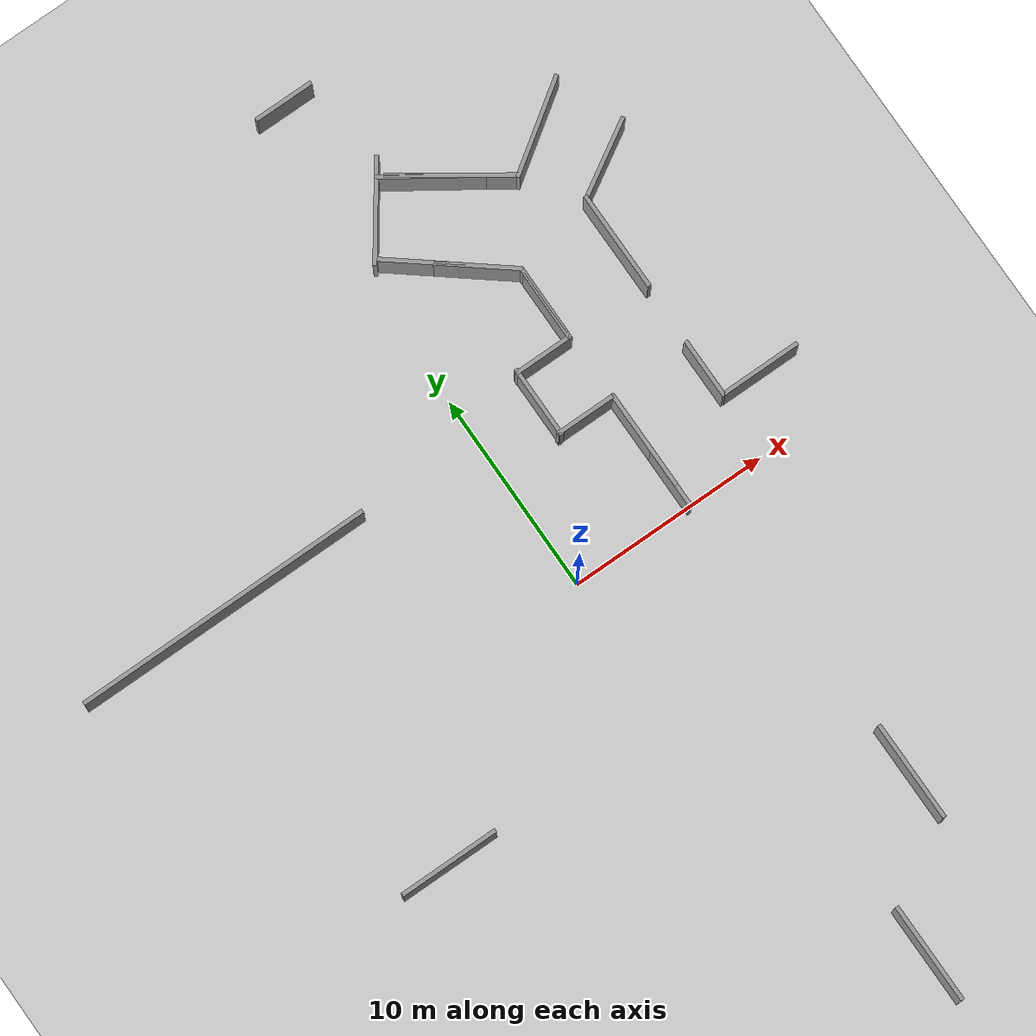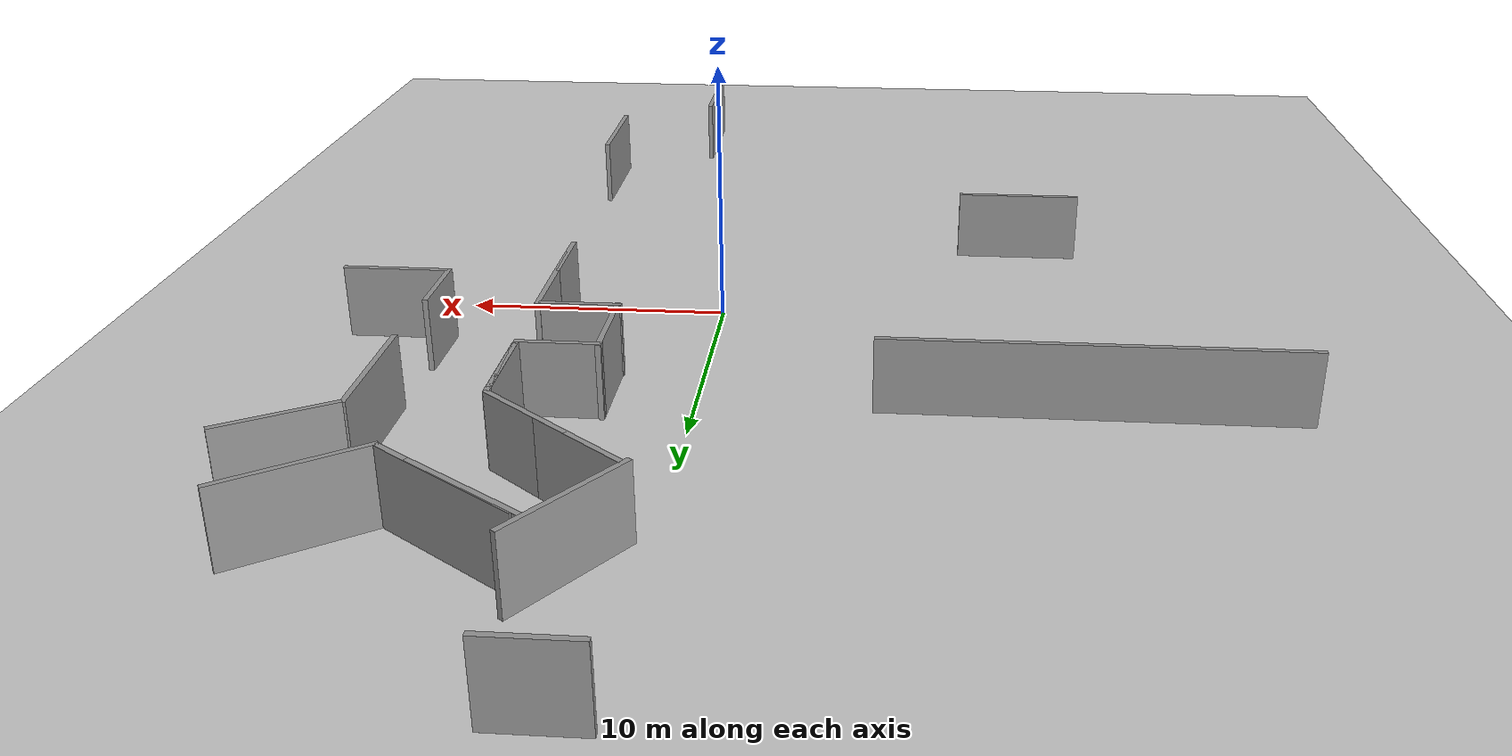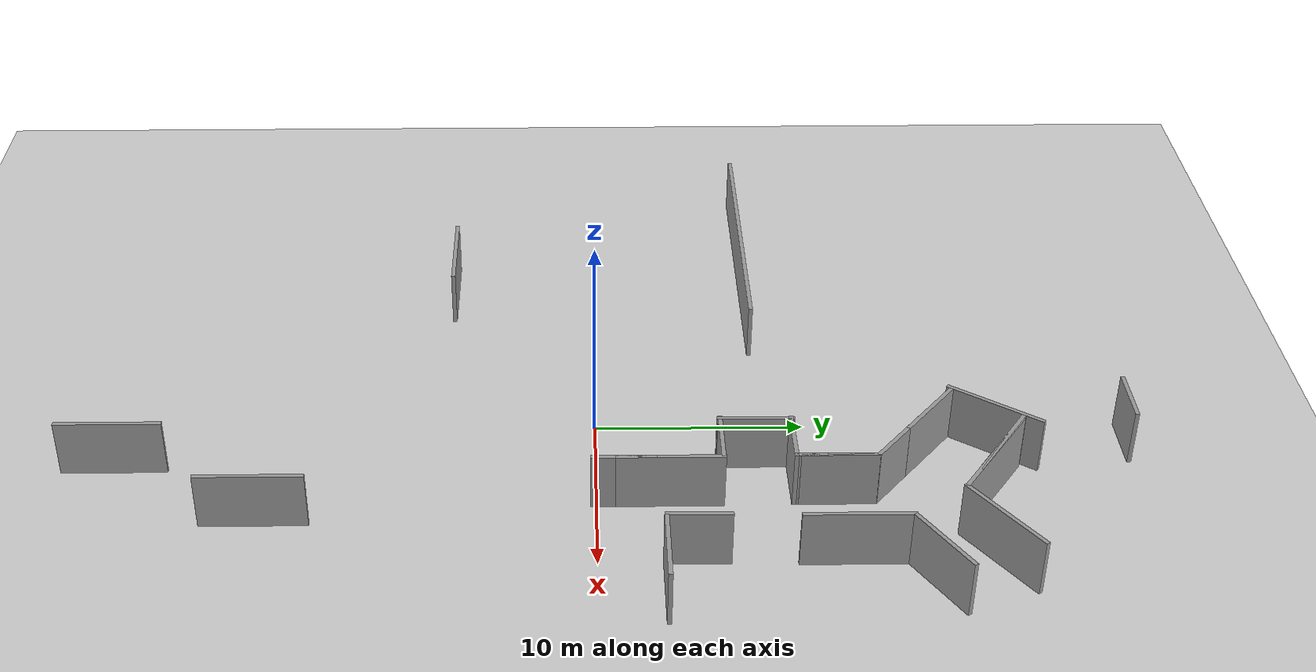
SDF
<sdf version="1.7">
 <world name="default">
  <model name="ground_plane">
   <static>1</static>
   <link name="link">
    <collision name="collision">
     <geometry><plane><normal>0 0 1</normal><size>100 100</size></plane></geometry>
     <surface>
      <contact><collide_bitmask>65535</collide_bitmask></contact>
      <friction><ode><mu>100</mu><mu2>50</mu2></ode></friction>
     </surface>
    </collision>
    <visual name="visual">
     <cast_shadows>0</cast_shadows>
     <geometry><plane><normal>0 0 1</normal><size>100 100</size></plane></geometry>
     <material>
      <script><uri>file://media/materials/scripts/gazebo.material</uri><name>Gazebo/Grey</name></script>
     </material>
    </visual>
   </link>
  </model>
  <model name="grey_wall_3">
   <link name="link">
    <pose>0 0 1.4 0 -0 0</pose>
    <inertial>
     <mass>1</mass>
     <inertia><ixx>1</ixx><ixy>0</ixy><ixz>0</ixz><iyy>1</iyy><iyz>0</iyz><izz>1</izz></inertia>
    </inertial>
    <visual name="visual">
     <cast_shadows>0</cast_shadows>
     <geometry><box><size>3 0.2 2.8</size></box></geometry>
     <material>
      <script>
       <uri>model://grey_wall/materials/scripts</uri>
       <uri>model://grey_wall/materials/textures</uri>
       <name>vrc/grey_wall</name>
      </script>
      <shader type="pixel"><normal_map>__default__</normal_map></shader>
      <ambient>1 1 1 1</ambient>
      <diffuse>1 1 1 1</diffuse>
      <specular>0 0 0 1</specular>
      <emissive>0 0 0 1</emissive>
     </material>
    </visual>
    <collision name="collision">
     <geometry><box><size>2.96 0.2 2.8</size></box></geometry>
     <surface>
      <friction>
       <ode><mu>1</mu><mu2>1</mu2><fdir1>0 0 0</fdir1><slip1>0</slip1><slip2>0</slip2></ode>
       <torsional>
        <coefficient>1</coefficient>
        <patch_radius>0</patch_radius>
        <surface_radius>0</surface_radius>
        <use_patch_radius>1</use_patch_radius>
        <ode><slip>0</slip></ode>
       </torsional>
      </friction>
      <bounce><restitution_coefficient>0</restitution_coefficient><threshold>1e+06</threshold></bounce>
      <contact>
       <collide_without_contact>0</collide_without_contact>
       <collide_without_contact_bitmask>1</collide_without_contact_bitmask>
       <collide_bitmask>1</collide_bitmask>
       <ode>
        <soft_cfm>0</soft_cfm>
        <soft_erp>0.2</soft_erp>
        <kp>1e+13</kp>
        <kd>1</kd>
        <max_vel>0.01</max_vel>
        <min_depth>0</min_depth>
       </ode>
       <bullet>
        <split_impulse>1</split_impulse>
        <split_impulse_penetration_threshold>-0.01</split_impulse_penetration_threshold>
        <soft_cfm>0</soft_cfm>
        <soft_erp>0.2</soft_erp>
        <kp>1e+13</kp>
        <kd>1</kd>
       </bullet>
      </contact>
     </surface>
    </collision>
   </link>
   <static>1</static>
   <pose>5.90874 1.24186 0 0 0 -1.57333</pose>
  </model>
  <model name="grey_wall_3_clone">
   <link name="link">
    <pose>0 0 1.4 0 -0 0</pose>
    <inertial>
     <mass>1</mass>
     <inertia><ixx>1</ixx><ixy>0</ixy><ixz>0</ixz><iyy>1</iyy><iyz>0</iyz><izz>1</izz></inertia>
    </inertial>
    <visual name="visual">
     <cast_shadows>0</cast_shadows>
     <geometry><box><size>3 0.2 2.8</size></box></geometry>
     <material>
      <script>
       <uri>model://grey_wall/materials/scripts</uri>
       <uri>model://grey_wall/materials/textures</uri>
       <name>vrc/grey_wall</name>
      </script>
      <shader type="pixel"><normal_map>__default__</normal_map></shader>
      <ambient>1 1 1 1</ambient>
      <diffuse>1 1 1 1</diffuse>
      <specular>0 0 0 1</specular>
      <emissive>0 0 0 1</emissive>
     </material>
    </visual>
    <collision name="collision">
     <geometry><box><size>2.96 0.2 2.8</size></box></geometry>
     <surface>
      <friction>
       <ode><mu>1</mu><mu2>1</mu2><fdir1>0 0 0</fdir1><slip1>0</slip1><slip2>0</slip2></ode>
       <torsional>
        <coefficient>1</coefficient>
        <patch_radius>0</patch_radius>
        <surface_radius>0</surface_radius>
        <use_patch_radius>1</use_patch_radius>
        <ode><slip>0</slip></ode>
       </torsional>
      </friction>
      <bounce><restitution_coefficient>0</restitution_coefficient><threshold>1e+06</threshold></bounce>
      <contact>
       <collide_without_contact>0</collide_without_contact>
       <collide_without_contact_bitmask>1</collide_without_contact_bitmask>
       <collide_bitmask>1</collide_bitmask>
       <ode>
        <soft_cfm>0</soft_cfm>
        <soft_erp>0.2</soft_erp>
        <kp>1e+13</kp>
        <kd>1</kd>
        <max_vel>0.01</max_vel>
        <min_depth>0</min_depth>
       </ode>
       <bullet>
        <split_impulse>1</split_impulse>
        <split_impulse_penetration_threshold>-0.01</split_impulse_penetration_threshold>
        <soft_cfm>0</soft_cfm>
        <soft_erp>0.2</soft_erp>
        <kp>1e+13</kp>
        <kd>1</kd>
       </bullet>
      </contact>
     </surface>
    </collision>
   </link>
   <static>1</static>
   <pose>4.44283 9.03157 0 0 -0 0</pose>
  </model>
  <model name="grey_wall_5">
   <link name="link">
    <pose>0 0 1.4 0 -0 0</pose>
    <inertial>
     <mass>1</mass>
     <inertia><ixx>1</ixx><ixy>0</ixy><ixz>0</ixz><iyy>1</iyy><iyz>0</iyz><izz>1</izz></inertia>
    </inertial>
    <visual name="visual">
     <cast_shadows>0</cast_shadows>
     <geometry><box><size>5 0.2 2.8</size></box></geometry>
     <material>
      <script>
       <uri>model://grey_wall/materials/scripts</uri>
       <uri>model://grey_wall/materials/textures</uri>
       <name>vrc/grey_wall</name>
      </script>
      <shader type="pixel"><normal_map>__default__</normal_map></shader>
      <ambient>1 1 1 1</ambient>
      <diffuse>1 1 1 1</diffuse>
      <specular>0 0 0 1</specular>
      <emissive>0 0 0 1</emissive>
     </material>
    </visual>
    <collision name="collision">
     <geometry><box><size>5 0.2 2.8</size></box></geometry>
     <surface>
      <friction>
       <ode><mu>1</mu><mu2>1</mu2><fdir1>0 0 0</fdir1><slip1>0</slip1><slip2>0</slip2></ode>
       <torsional>
        <coefficient>1</coefficient>
        <patch_radius>0</patch_radius>
        <surface_radius>0</surface_radius>
        <use_patch_radius>1</use_patch_radius>
        <ode><slip>0</slip></ode>
       </torsional>
      </friction>
      <bounce><restitution_coefficient>0</restitution_coefficient><threshold>1e+06</threshold></bounce>
      <contact>
       <collide_without_contact>0</collide_without_contact>
       <collide_without_contact_bitmask>1</collide_without_contact_bitmask>
       <collide_bitmask>1</collide_bitmask>
       <ode>
        <soft_cfm>0</soft_cfm>
        <soft_erp>0.2</soft_erp>
        <kp>1e+13</kp>
        <kd>1</kd>
        <max_vel>0.01</max_vel>
        <min_depth>0</min_depth>
       </ode>
       <bullet>
        <split_impulse>1</split_impulse>
        <split_impulse_penetration_threshold>-0.01</split_impulse_penetration_threshold>
        <soft_cfm>0</soft_cfm>
        <soft_erp>0.2</soft_erp>
        <kp>1e+13</kp>
        <kd>1</kd>
       </bullet>
      </contact>
     </surface>
    </collision>
   </link>
   <static>1</static>
   <pose>-11.9319 -7.1493 0 0 0 -0.000612</pose>
  </model>
  <model name="grey_wall_5_clone_clone_0_clone">
   <link name="link">
    <pose>0 0 1.4 0 -0 0</pose>
    <inertial>
     <mass>1</mass>
     <inertia><ixx>1</ixx><ixy>0</ixy><ixz>0</ixz><iyy>1</iyy><iyz>0</iyz><izz>1</izz></inertia>
    </inertial>
    <visual name="visual">
     <cast_shadows>0</cast_shadows>
     <geometry><box><size>5 0.2 2.8</size></box></geometry>
     <material>
      <script>
       <uri>model://grey_wall/materials/scripts</uri>
       <uri>model://grey_wall/materials/textures</uri>
       <name>vrc/grey_wall</name>
      </script>
      <shader type="pixel"><normal_map>__default__</normal_map></shader>
      <ambient>1 1 1 1</ambient>
      <diffuse>1 1 1 1</diffuse>
      <specular>0 0 0 1</specular>
      <emissive>0 0 0 1</emissive>
     </material>
    </visual>
    <collision name="collision">
     <geometry><box><size>5 0.2 2.8</size></box></geometry>
     <surface>
      <friction>
       <ode><mu>1</mu><mu2>1</mu2><fdir1>0 0 0</fdir1><slip1>0</slip1><slip2>0</slip2></ode>
       <torsional>
        <coefficient>1</coefficient>
        <patch_radius>0</patch_radius>
        <surface_radius>0</surface_radius>
        <use_patch_radius>1</use_patch_radius>
        <ode><slip>0</slip></ode>
       </torsional>
      </friction>
      <bounce><restitution_coefficient>0</restitution_coefficient><threshold>1e+06</threshold></bounce>
      <contact>
       <collide_without_contact>0</collide_without_contact>
       <collide_without_contact_bitmask>1</collide_without_contact_bitmask>
       <collide_bitmask>1</collide_bitmask>
       <ode>
        <soft_cfm>0</soft_cfm>
        <soft_erp>0.2</soft_erp>
        <kp>1e+13</kp>
        <kd>1</kd>
        <max_vel>0.01</max_vel>
        <min_depth>0</min_depth>
       </ode>
       <bullet>
        <split_impulse>1</split_impulse>
        <split_impulse_penetration_threshold>-0.01</split_impulse_penetration_threshold>
        <soft_cfm>0</soft_cfm>
        <soft_erp>0.2</soft_erp>
        <kp>1e+13</kp>
        <kd>1</kd>
       </bullet>
      </contact>
     </surface>
    </collision>
   </link>
   <static>1</static>
   <pose>3.0847 -22.4947 0 0 -0 1.57141</pose>
  </model>
  <model name="grey_wall_5_clone_clone_0_clone_0">
   <link name="link">
    <pose>0 0 1.4 0 -0 0</pose>
    <inertial>
     <mass>1</mass>
     <inertia><ixx>1</ixx><ixy>0</ixy><ixz>0</ixz><iyy>1</iyy><iyz>0</iyz><izz>1</izz></inertia>
    </inertial>
    <visual name="visual">
     <cast_shadows>0</cast_shadows>
     <geometry><box><size>5 0.2 2.8</size></box></geometry>
     <material>
      <script>
       <uri>model://grey_wall/materials/scripts</uri>
       <uri>model://grey_wall/materials/textures</uri>
       <name>vrc/grey_wall</name>
      </script>
      <shader type="pixel"><normal_map>__default__</normal_map></shader>
      <ambient>1 1 1 1</ambient>
      <diffuse>1 1 1 1</diffuse>
      <specular>0 0 0 1</specular>
      <emissive>0 0 0 1</emissive>
     </material>
    </visual>
    <collision name="collision">
     <geometry><box><size>5 0.2 2.8</size></box></geometry>
     <surface>
      <friction>
       <ode><mu>1</mu><mu2>1</mu2><fdir1>0 0 0</fdir1><slip1>0</slip1><slip2>0</slip2></ode>
       <torsional>
        <coefficient>1</coefficient>
        <patch_radius>0</patch_radius>
        <surface_radius>0</surface_radius>
        <use_patch_radius>1</use_patch_radius>
        <ode><slip>0</slip></ode>
       </torsional>
      </friction>
      <bounce><restitution_coefficient>0</restitution_coefficient><threshold>1e+06</threshold></bounce>
      <contact>
       <collide_without_contact>0</collide_without_contact>
       <collide_without_contact_bitmask>1</collide_without_contact_bitmask>
       <collide_bitmask>1</collide_bitmask>
       <ode>
        <soft_cfm>0</soft_cfm>
        <soft_erp>0.2</soft_erp>
        <kp>1e+13</kp>
        <kd>1</kd>
        <max_vel>0.01</max_vel>
        <min_depth>0</min_depth>
       </ode>
       <bullet>
        <split_impulse>1</split_impulse>
        <split_impulse_penetration_threshold>-0.01</split_impulse_penetration_threshold>
        <soft_cfm>0</soft_cfm>
        <soft_erp>0.2</soft_erp>
        <kp>1e+13</kp>
        <kd>1</kd>
       </bullet>
      </contact>
     </surface>
    </collision>
   </link>
   <static>1</static>
   <pose>7.0941 -15.5005 0 0 -0 1.57141</pose>
  </model>
  <model name="grey_wall_5_clone_clone_0_clone_1_clone">
   <link name="link">
    <pose>0 0 1.4 0 -0 0</pose>
    <inertial>
     <mass>1</mass>
     <inertia><ixx>1</ixx><ixy>0</ixy><ixz>0</ixz><iyy>1</iyy><iyz>0</iyz><izz>1</izz></inertia>
    </inertial>
    <visual name="visual">
     <cast_shadows>0</cast_shadows>
     <geometry><box><size>5 0.2 2.8</size></box></geometry>
     <material>
      <script>
       <uri>model://grey_wall/materials/scripts</uri>
       <uri>model://grey_wall/materials/textures</uri>
       <name>vrc/grey_wall</name>
      </script>
      <shader type="pixel"><normal_map>__default__</normal_map></shader>
      <ambient>1 1 1 1</ambient>
      <diffuse>1 1 1 1</diffuse>
      <specular>0 0 0 1</specular>
      <emissive>0 0 0 1</emissive>
     </material>
    </visual>
    <collision name="collision">
     <geometry><box><size>5 0.2 2.8</size></box></geometry>
     <surface>
      <friction>
       <ode><mu>1</mu><mu2>1</mu2><fdir1>0 0 0</fdir1><slip1>0</slip1><slip2>0</slip2></ode>
       <torsional>
        <coefficient>1</coefficient>
        <patch_radius>0</patch_radius>
        <surface_radius>0</surface_radius>
        <use_patch_radius>1</use_patch_radius>
        <ode><slip>0</slip></ode>
       </torsional>
      </friction>
      <bounce><restitution_coefficient>0</restitution_coefficient><threshold>1e+06</threshold></bounce>
      <contact>
       <collide_without_contact>0</collide_without_contact>
       <collide_without_contact_bitmask>1</collide_without_contact_bitmask>
       <collide_bitmask>1</collide_bitmask>
       <ode>
        <soft_cfm>0</soft_cfm>
        <soft_erp>0.2</soft_erp>
        <kp>1e+13</kp>
        <kd>1</kd>
        <max_vel>0.01</max_vel>
        <min_depth>0</min_depth>
       </ode>
       <bullet>
        <split_impulse>1</split_impulse>
        <split_impulse_penetration_threshold>-0.01</split_impulse_penetration_threshold>
        <soft_cfm>0</soft_cfm>
        <soft_erp>0.2</soft_erp>
        <kp>1e+13</kp>
        <kd>1</kd>
       </bullet>
      </contact>
     </surface>
    </collision>
   </link>
   <static>1</static>
   <pose>10.1491 17.6933 0 0 -0 0.603575</pose>
  </model>
  <model name="grey_wall_5_clone_clone_0_clone_1_clone_0">
   <link name="link">
    <pose>0 0 1.4 0 -0 0</pose>
    <inertial>
     <mass>1</mass>
     <inertia><ixx>1</ixx><ixy>0</ixy><ixz>0</ixz><iyy>1</iyy><iyz>0</iyz><izz>1</izz></inertia>
    </inertial>
    <visual name="visual">
     <cast_shadows>0</cast_shadows>
     <geometry><box><size>5 0.2 2.8</size></box></geometry>
     <material>
      <script>
       <uri>model://grey_wall/materials/scripts</uri>
       <uri>model://grey_wall/materials/textures</uri>
       <name>vrc/grey_wall</name>
      </script>
      <shader type="pixel"><normal_map>__default__</normal_map></shader>
      <ambient>1 1 1 1</ambient>
      <diffuse>1 1 1 1</diffuse>
      <specular>0 0 0 1</specular>
      <emissive>0 0 0 1</emissive>
     </material>
    </visual>
    <collision name="collision">
     <geometry><box><size>5 0.2 2.8</size></box></geometry>
     <surface>
      <friction>
       <ode><mu>1</mu><mu2>1</mu2><fdir1>0 0 0</fdir1><slip1>0</slip1><slip2>0</slip2></ode>
       <torsional>
        <coefficient>1</coefficient>
        <patch_radius>0</patch_radius>
        <surface_radius>0</surface_radius>
        <use_patch_radius>1</use_patch_radius>
        <ode><slip>0</slip></ode>
       </torsional>
      </friction>
      <bounce><restitution_coefficient>0</restitution_coefficient><threshold>1e+06</threshold></bounce>
      <contact>
       <collide_without_contact>0</collide_without_contact>
       <collide_without_contact_bitmask>1</collide_without_contact_bitmask>
       <collide_bitmask>1</collide_bitmask>
       <ode>
        <soft_cfm>0</soft_cfm>
        <soft_erp>0.2</soft_erp>
        <kp>1e+13</kp>
        <kd>1</kd>
        <max_vel>0.01</max_vel>
        <min_depth>0</min_depth>
       </ode>
       <bullet>
        <split_impulse>1</split_impulse>
        <split_impulse_penetration_threshold>-0.01</split_impulse_penetration_threshold>
        <soft_cfm>0</soft_cfm>
        <soft_erp>0.2</soft_erp>
        <kp>1e+13</kp>
        <kd>1</kd>
       </bullet>
      </contact>
     </surface>
    </collision>
   </link>
   <static>1</static>
   <pose>4.91941 18.5529 0 0 -0 2.55063</pose>
  </model>
  <model name="grey_wall_4_clone">
   <link name="link">
    <pose>0 0 1.4 0 -0 0</pose>
    <inertial>
     <mass>1</mass>
     <inertia><ixx>1</ixx><ixy>0</ixy><ixz>0</ixz><iyy>1</iyy><iyz>0</iyz><izz>1</izz></inertia>
    </inertial>
    <visual name="visual">
     <cast_shadows>0</cast_shadows>
     <geometry><box><size>4 0.2 2.8</size></box></geometry>
     <material>
      <script>
       <uri>model://grey_wall/materials/scripts</uri>
       <uri>model://grey_wall/materials/textures</uri>
       <name>vrc/grey_wall</name>
      </script>
      <shader type="pixel"><normal_map>__default__</normal_map></shader>
      <ambient>1 1 1 1</ambient>
      <diffuse>1 1 1 1</diffuse>
      <specular>0 0 0 1</specular>
      <emissive>0 0 0 1</emissive>
     </material>
    </visual>
    <collision name="collision">
     <geometry><box><size>4 0.2 2.8</size></box></geometry>
     <surface>
      <friction>
       <ode><mu>1</mu><mu2>1</mu2><fdir1>0 0 0</fdir1><slip1>0</slip1><slip2>0</slip2></ode>
       <torsional>
        <coefficient>1</coefficient>
        <patch_radius>0</patch_radius>
        <surface_radius>0</surface_radius>
        <use_patch_radius>1</use_patch_radius>
        <ode><slip>0</slip></ode>
       </torsional>
      </friction>
      <bounce><restitution_coefficient>0</restitution_coefficient><threshold>1e+06</threshold></bounce>
      <contact>
       <collide_without_contact>0</collide_without_contact>
       <collide_without_contact_bitmask>1</collide_without_contact_bitmask>
       <collide_bitmask>1</collide_bitmask>
       <ode>
        <soft_cfm>0</soft_cfm>
        <soft_erp>0.2</soft_erp>
        <kp>1e+13</kp>
        <kd>1</kd>
        <max_vel>0.01</max_vel>
        <min_depth>0</min_depth>
       </ode>
       <bullet>
        <split_impulse>1</split_impulse>
        <split_impulse_penetration_threshold>-0.01</split_impulse_penetration_threshold>
        <soft_cfm>0</soft_cfm>
        <soft_erp>0.2</soft_erp>
        <kp>1e+13</kp>
        <kd>1</kd>
       </bullet>
      </contact>
     </surface>
    </collision>
   </link>
   <static>1</static>
   <pose>12 2.99627 0 0 -0 0</pose>
  </model>
  <model name="grey_wall_6_clone_clone_1">
   <link name="link">
    <pose>0 0 1.4 0 -0 0</pose>
    <inertial>
     <mass>1</mass>
     <inertia><ixx>1</ixx><ixy>0</ixy><ixz>0</ixz><iyy>1</iyy><iyz>0</iyz><izz>1</izz></inertia>
    </inertial>
    <visual name="visual">
     <cast_shadows>0</cast_shadows>
     <geometry><box><size>6 0.2 2.8</size></box></geometry>
     <material>
      <script>
       <uri>model://grey_wall/materials/scripts</uri>
       <uri>model://grey_wall/materials/textures</uri>
       <name>vrc/grey_wall</name>
      </script>
      <shader type="pixel"><normal_map>__default__</normal_map></shader>
      <ambient>1 1 1 1</ambient>
      <diffuse>1 1 1 1</diffuse>
      <specular>0 0 0 1</specular>
      <emissive>0 0 0 1</emissive>
     </material>
    </visual>
    <collision name="collision">
     <geometry><box><size>6 0.2 2.8</size></box></geometry>
     <surface>
      <friction>
       <ode><mu>1</mu><mu2>1</mu2><fdir1>0 0 0</fdir1><slip1>0</slip1><slip2>0</slip2></ode>
       <torsional>
        <coefficient>1</coefficient>
        <patch_radius>0</patch_radius>
        <surface_radius>0</surface_radius>
        <use_patch_radius>1</use_patch_radius>
        <ode><slip>0</slip></ode>
       </torsional>
      </friction>
      <bounce><restitution_coefficient>0</restitution_coefficient><threshold>1e+06</threshold></bounce>
      <contact>
       <collide_without_contact>0</collide_without_contact>
       <collide_without_contact_bitmask>1</collide_without_contact_bitmask>
       <collide_bitmask>1</collide_bitmask>
       <ode>
        <soft_cfm>0</soft_cfm>
        <soft_erp>0.2</soft_erp>
        <kp>1e+13</kp>
        <kd>1</kd>
        <max_vel>0.01</max_vel>
        <min_depth>0</min_depth>
       </ode>
       <bullet>
        <split_impulse>1</split_impulse>
        <split_impulse_penetration_threshold>-0.01</split_impulse_penetration_threshold>
        <soft_cfm>0</soft_cfm>
        <soft_erp>0.2</soft_erp>
        <kp>1e+13</kp>
        <kd>1</kd>
       </bullet>
      </contact>
     </surface>
    </collision>
   </link>
   <static>1</static>
   <pose>5.70227 18.0603 0 0 -0 2.53788</pose>
  </model>
  <model name="grey_wall_4_clone_clone">
   <link name="link">
    <pose>0 0 1.4 0 -0 0</pose>
    <inertial>
     <mass>1</mass>
     <inertia><ixx>1</ixx><ixy>0</ixy><ixz>0</ixz><iyy>1</iyy><iyz>0</iyz><izz>1</izz></inertia>
    </inertial>
    <visual name="visual">
     <cast_shadows>0</cast_shadows>
     <geometry><box><size>4 0.2 2.8</size></box></geometry>
     <material>
      <script>
       <uri>model://grey_wall/materials/scripts</uri>
       <uri>model://grey_wall/materials/textures</uri>
       <name>vrc/grey_wall</name>
      </script>
      <shader type="pixel"><normal_map>__default__</normal_map></shader>
      <ambient>1 1 1 1</ambient>
      <diffuse>1 1 1 1</diffuse>
      <specular>0 0 0 1</specular>
      <emissive>0 0 0 1</emissive>
     </material>
    </visual>
    <collision name="collision">
     <geometry><box><size>4 0.2 2.8</size></box></geometry>
     <surface>
      <friction>
       <ode><mu>1</mu><mu2>1</mu2><fdir1>0 0 0</fdir1><slip1>0</slip1><slip2>0</slip2></ode>
       <torsional>
        <coefficient>1</coefficient>
        <patch_radius>0</patch_radius>
        <surface_radius>0</surface_radius>
        <use_patch_radius>1</use_patch_radius>
        <ode><slip>0</slip></ode>
       </torsional>
      </friction>
      <bounce><restitution_coefficient>0</restitution_coefficient><threshold>1e+06</threshold></bounce>
      <contact>
       <collide_without_contact>0</collide_without_contact>
       <collide_without_contact_bitmask>1</collide_without_contact_bitmask>
       <collide_bitmask>1</collide_bitmask>
       <ode>
        <soft_cfm>0</soft_cfm>
        <soft_erp>0.2</soft_erp>
        <kp>1e+13</kp>
        <kd>1</kd>
        <max_vel>0.01</max_vel>
        <min_depth>0</min_depth>
       </ode>
       <bullet>
        <split_impulse>1</split_impulse>
        <split_impulse_penetration_threshold>-0.01</split_impulse_penetration_threshold>
        <soft_cfm>0</soft_cfm>
        <soft_erp>0.2</soft_erp>
        <kp>1e+13</kp>
        <kd>1</kd>
       </bullet>
      </contact>
     </surface>
    </collision>
   </link>
   <static>1</static>
   <pose>11.8334 14.8029 0 0 -0 0.540349</pose>
  </model>
  <model name="grey_wall_15_clone_0_clone_clone">
   <link name="link">
    <pose>0 0 1.4 0 -0 0</pose>
    <inertial>
     <mass>1</mass>
     <inertia><ixx>1</ixx><ixy>0</ixy><ixz>0</ixz><iyy>1</iyy><iyz>0</iyz><izz>1</izz></inertia>
    </inertial>
    <visual name="visual">
     <cast_shadows>0</cast_shadows>
     <geometry><box><size>15 0.2 2.8</size></box></geometry>
     <material>
      <script>
       <uri>model://grey_wall/materials/scripts</uri>
       <uri>model://grey_wall/materials/textures</uri>
       <name>vrc/grey_wall</name>
      </script>
      <shader type="pixel"><normal_map>__default__</normal_map></shader>
      <ambient>1 1 1 1</ambient>
      <diffuse>1 1 1 1</diffuse>
      <specular>0 0 0 1</specular>
      <emissive>0 0 0 1</emissive>
     </material>
    </visual>
    <collision name="collision">
     <geometry><box><size>15 0.2 2.8</size></box></geometry>
     <surface>
      <friction>
       <ode><mu>1</mu><mu2>1</mu2><fdir1>0 0 0</fdir1><slip1>0</slip1><slip2>0</slip2></ode>
       <torsional>
        <coefficient>1</coefficient>
        <patch_radius>0</patch_radius>
        <surface_radius>0</surface_radius>
        <use_patch_radius>1</use_patch_radius>
        <ode><slip>0</slip></ode>
       </torsional>
      </friction>
      <bounce><restitution_coefficient>0</restitution_coefficient><threshold>1e+06</threshold></bounce>
      <contact>
       <collide_without_contact>0</collide_without_contact>
       <collide_without_contact_bitmask>1</collide_without_contact_bitmask>
       <collide_bitmask>1</collide_bitmask>
       <ode>
        <soft_cfm>0</soft_cfm>
        <soft_erp>0.2</soft_erp>
        <kp>1e+13</kp>
        <kd>1</kd>
        <max_vel>0.01</max_vel>
        <min_depth>0</min_depth>
       </ode>
       <bullet>
        <split_impulse>1</split_impulse>
        <split_impulse_penetration_threshold>-0.01</split_impulse_penetration_threshold>
        <soft_cfm>0</soft_cfm>
        <soft_erp>0.2</soft_erp>
        <kp>1e+13</kp>
        <kd>1</kd>
       </bullet>
      </contact>
     </surface>
    </collision>
   </link>
   <static>1</static>
   <pose>-13.6396 7.85707 0 0 -0 0.001488</pose>
  </model>
  <model name="grey_wall_5_clone_2_clone">
   <link name="link">
    <pose>0 0 1.4 0 -0 0</pose>
    <inertial>
     <mass>1</mass>
     <inertia><ixx>1</ixx><ixy>0</ixy><ixz>0</ixz><iyy>1</iyy><iyz>0</iyz><izz>1</izz></inertia>
    </inertial>
    <visual name="visual">
     <cast_shadows>0</cast_shadows>
     <geometry><box><size>5 0.2 2.8</size></box></geometry>
     <material>
      <script>
       <uri>model://grey_wall/materials/scripts</uri>
       <uri>model://grey_wall/materials/textures</uri>
       <name>vrc/grey_wall</name>
      </script>
      <shader type="pixel"><normal_map>__default__</normal_map></shader>
      <ambient>1 1 1 1</ambient>
      <diffuse>1 1 1 1</diffuse>
      <specular>0 0 0 1</specular>
      <emissive>0 0 0 1</emissive>
     </material>
    </visual>
    <collision name="collision">
     <geometry><box><size>5 0.2 2.8</size></box></geometry>
     <surface>
      <friction>
       <ode><mu>1</mu><mu2>1</mu2><fdir1>0 0 0</fdir1><slip1>0</slip1><slip2>0</slip2></ode>
       <torsional>
        <coefficient>1</coefficient>
        <patch_radius>0</patch_radius>
        <surface_radius>0</surface_radius>
        <use_patch_radius>1</use_patch_radius>
        <ode><slip>0</slip></ode>
       </torsional>
      </friction>
      <bounce><restitution_coefficient>0</restitution_coefficient><threshold>1e+06</threshold></bounce>
      <contact>
       <collide_without_contact>0</collide_without_contact>
       <collide_without_contact_bitmask>1</collide_without_contact_bitmask>
       <collide_bitmask>1</collide_bitmask>
       <ode>
        <soft_cfm>0</soft_cfm>
        <soft_erp>0.2</soft_erp>
        <kp>1e+13</kp>
        <kd>1</kd>
        <max_vel>0.01</max_vel>
        <min_depth>0</min_depth>
       </ode>
       <bullet>
        <split_impulse>1</split_impulse>
        <split_impulse_penetration_threshold>-0.01</split_impulse_penetration_threshold>
        <soft_cfm>0</soft_cfm>
        <soft_erp>0.2</soft_erp>
        <kp>1e+13</kp>
        <kd>1</kd>
       </bullet>
      </contact>
     </surface>
    </collision>
   </link>
   <static>1</static>
   <pose>10.0847 11.358 0 0 0 -1.57047</pose>
  </model>
  <model name="grey_wall_5_clone_clone">
   <link name="link">
    <pose>0 0 1.4 0 -0 0</pose>
    <inertial>
     <mass>1</mass>
     <inertia><ixx>1</ixx><ixy>0</ixy><ixz>0</ixz><iyy>1</iyy><iyz>0</iyz><izz>1</izz></inertia>
    </inertial>
    <visual name="visual">
     <cast_shadows>0</cast_shadows>
     <geometry><box><size>5 0.2 2.8</size></box></geometry>
     <material>
      <script>
       <uri>model://grey_wall/materials/scripts</uri>
       <uri>model://grey_wall/materials/textures</uri>
       <name>vrc/grey_wall</name>
      </script>
      <shader type="pixel"><normal_map>__default__</normal_map></shader>
      <ambient>1 1 1 1</ambient>
      <diffuse>1 1 1 1</diffuse>
      <specular>0 0 0 1</specular>
      <emissive>0 0 0 1</emissive>
     </material>
    </visual>
    <collision name="collision">
     <geometry><box><size>5 0.2 2.8</size></box></geometry>
     <surface>
      <friction>
       <ode><mu>1</mu><mu2>1</mu2><fdir1>0 0 0</fdir1><slip1>0</slip1><slip2>0</slip2></ode>
       <torsional>
        <coefficient>1</coefficient>
        <patch_radius>0</patch_radius>
        <surface_radius>0</surface_radius>
        <use_patch_radius>1</use_patch_radius>
        <ode><slip>0</slip></ode>
       </torsional>
      </friction>
      <bounce><restitution_coefficient>0</restitution_coefficient><threshold>1e+06</threshold></bounce>
      <contact>
       <collide_without_contact>0</collide_without_contact>
       <collide_without_contact_bitmask>1</collide_without_contact_bitmask>
       <collide_bitmask>1</collide_bitmask>
       <ode>
        <soft_cfm>0</soft_cfm>
        <soft_erp>0.2</soft_erp>
        <kp>1e+13</kp>
        <kd>1</kd>
        <max_vel>0.01</max_vel>
        <min_depth>0</min_depth>
       </ode>
       <bullet>
        <split_impulse>1</split_impulse>
        <split_impulse_penetration_threshold>-0.01</split_impulse_penetration_threshold>
        <soft_cfm>0</soft_cfm>
        <soft_erp>0.2</soft_erp>
        <kp>1e+13</kp>
        <kd>1</kd>
       </bullet>
      </contact>
     </surface>
    </collision>
   </link>
   <static>1</static>
   <pose>5.91398 3.35809 0 0 -0 1.57141</pose>
  </model>
  <model name="grey_wall_3.6_clone_0_clone">
   <link name="link">
    <pose>0 0 1.4 0 -0 0</pose>
    <inertial>
     <mass>1</mass>
     <inertia><ixx>1</ixx><ixy>0</ixy><ixz>0</ixz><iyy>1</iyy><iyz>0</iyz><izz>1</izz></inertia>
    </inertial>
    <visual name="visual">
     <cast_shadows>0</cast_shadows>
     <geometry><box><size>3 0.2 2.8</size></box></geometry>
     <material>
      <script>
       <uri>model://grey_wall/materials/scripts</uri>
       <uri>model://grey_wall/materials/textures</uri>
       <name>vrc/grey_wall</name>
      </script>
      <shader type="pixel"><normal_map>__default__</normal_map></shader>
      <ambient>1 1 1 1</ambient>
      <diffuse>1 1 1 1</diffuse>
      <specular>0 0 0 1</specular>
      <emissive>0 0 0 1</emissive>
     </material>
    </visual>
    <collision name="collision">
     <geometry><box><size>3 0.2 2.8</size></box></geometry>
     <surface>
      <friction>
       <ode><mu>1</mu><mu2>1</mu2><fdir1>0 0 0</fdir1><slip1>0</slip1><slip2>0</slip2></ode>
       <torsional>
        <coefficient>1</coefficient>
        <patch_radius>0</patch_radius>
        <surface_radius>0</surface_radius>
        <use_patch_radius>1</use_patch_radius>
        <ode><slip>0</slip></ode>
       </torsional>
      </friction>
      <bounce><restitution_coefficient>0</restitution_coefficient><threshold>1e+06</threshold></bounce>
      <contact>
       <collide_without_contact>0</collide_without_contact>
       <collide_without_contact_bitmask>1</collide_without_contact_bitmask>
       <collide_bitmask>1</collide_bitmask>
       <ode>
        <soft_cfm>0</soft_cfm>
        <soft_erp>0.2</soft_erp>
        <kp>1e+13</kp>
        <kd>1</kd>
        <max_vel>0.01</max_vel>
        <min_depth>0</min_depth>
       </ode>
       <bullet>
        <split_impulse>1</split_impulse>
        <split_impulse_penetration_threshold>-0.01</split_impulse_penetration_threshold>
        <soft_cfm>0</soft_cfm>
        <soft_erp>0.2</soft_erp>
        <kp>1e+13</kp>
        <kd>1</kd>
       </bullet>
      </contact>
     </surface>
    </collision>
   </link>
   <static>1</static>
   <pose>9.97967 4.41394 0 0 0 -1.57333</pose>
  </model>
  <model name="grey_wall_3.6_clone_0">
   <link name="link">
    <pose>0 0 1.4 0 -0 0</pose>
    <inertial>
     <mass>1</mass>
     <inertia><ixx>1</ixx><ixy>0</ixy><ixz>0</ixz><iyy>1</iyy><iyz>0</iyz><izz>1</izz></inertia>
    </inertial>
    <visual name="visual">
     <cast_shadows>0</cast_shadows>
     <geometry><box><size>3.6 0.2 2.8</size></box></geometry>
     <material>
      <script>
       <uri>model://grey_wall/materials/scripts</uri>
       <uri>model://grey_wall/materials/textures</uri>
       <name>vrc/grey_wall</name>
      </script>
      <shader type="pixel"><normal_map>__default__</normal_map></shader>
      <ambient>1 1 1 1</ambient>
      <diffuse>1 1 1 1</diffuse>
      <specular>0 0 0 1</specular>
      <emissive>0 0 0 1</emissive>
     </material>
    </visual>
    <collision name="collision">
     <geometry><box><size>3.6 0.2 2.8</size></box></geometry>
     <surface>
      <friction>
       <ode><mu>1</mu><mu2>1</mu2><fdir1>0 0 0</fdir1><slip1>0</slip1><slip2>0</slip2></ode>
       <torsional>
        <coefficient>1</coefficient>
        <patch_radius>0</patch_radius>
        <surface_radius>0</surface_radius>
        <use_patch_radius>1</use_patch_radius>
        <ode><slip>0</slip></ode>
       </torsional>
      </friction>
      <bounce><restitution_coefficient>0</restitution_coefficient><threshold>1e+06</threshold></bounce>
      <contact>
       <collide_without_contact>0</collide_without_contact>
       <collide_without_contact_bitmask>1</collide_without_contact_bitmask>
       <collide_bitmask>1</collide_bitmask>
       <ode>
        <soft_cfm>0</soft_cfm>
        <soft_erp>0.2</soft_erp>
        <kp>1e+13</kp>
        <kd>1</kd>
        <max_vel>0.01</max_vel>
        <min_depth>0</min_depth>
       </ode>
       <bullet>
        <split_impulse>1</split_impulse>
        <split_impulse_penetration_threshold>-0.01</split_impulse_penetration_threshold>
        <soft_cfm>0</soft_cfm>
        <soft_erp>0.2</soft_erp>
        <kp>1e+13</kp>
        <kd>1</kd>
       </bullet>
      </contact>
     </surface>
    </collision>
   </link>
   <static>1</static>
   <pose>3.05173 7.40279 0 0 0 -1.57333</pose>
  </model>
  <model name="grey_wall_3.6_clone_1">
   <link name="link">
    <pose>0 0 1.4 0 -0 0</pose>
    <inertial>
     <mass>1</mass>
     <inertia><ixx>1</ixx><ixy>0</ixy><ixz>0</ixz><iyy>1</iyy><iyz>0</iyz><izz>1</izz></inertia>
    </inertial>
    <visual name="visual">
     <cast_shadows>0</cast_shadows>
     <geometry><box><size>3.6 0.2 2.8</size></box></geometry>
     <material>
      <script>
       <uri>model://grey_wall/materials/scripts</uri>
       <uri>model://grey_wall/materials/textures</uri>
       <name>vrc/grey_wall</name>
      </script>
      <shader type="pixel"><normal_map>__default__</normal_map></shader>
      <ambient>1 1 1 1</ambient>
      <diffuse>1 1 1 1</diffuse>
      <specular>0 0 0 1</specular>
      <emissive>0 0 0 1</emissive>
     </material>
    </visual>
    <collision name="collision">
     <geometry><box><size>3.6 0.2 2.8</size></box></geometry>
     <surface>
      <friction>
       <ode><mu>1</mu><mu2>1</mu2><fdir1>0 0 0</fdir1><slip1>0</slip1><slip2>0</slip2></ode>
       <torsional>
        <coefficient>1</coefficient>
        <patch_radius>0</patch_radius>
        <surface_radius>0</surface_radius>
        <use_patch_radius>1</use_patch_radius>
        <ode><slip>0</slip></ode>
       </torsional>
      </friction>
      <bounce><restitution_coefficient>0</restitution_coefficient><threshold>1e+06</threshold></bounce>
      <contact>
       <collide_without_contact>0</collide_without_contact>
       <collide_without_contact_bitmask>1</collide_without_contact_bitmask>
       <collide_bitmask>1</collide_bitmask>
       <ode>
        <soft_cfm>0</soft_cfm>
        <soft_erp>0.2</soft_erp>
        <kp>1e+13</kp>
        <kd>1</kd>
        <max_vel>0.01</max_vel>
        <min_depth>0</min_depth>
       </ode>
       <bullet>
        <split_impulse>1</split_impulse>
        <split_impulse_penetration_threshold>-0.01</split_impulse_penetration_threshold>
        <soft_cfm>0</soft_cfm>
        <soft_erp>0.2</soft_erp>
        <kp>1e+13</kp>
        <kd>1</kd>
       </bullet>
      </contact>
     </surface>
    </collision>
   </link>
   <static>1</static>
   <pose>5.85756 11.0337 0 0 0 -1.57333</pose>
  </model>
  <model name="grey_wall_5_clone_clone_0_clone_1_clone_clone_1">
   <link name="link">
    <pose>0 0 1.4 0 -0 0</pose>
    <inertial>
     <mass>1</mass>
     <inertia><ixx>1</ixx><ixy>0</ixy><ixz>0</ixz><iyy>1</iyy><iyz>0</iyz><izz>1</izz></inertia>
    </inertial>
    <visual name="visual">
     <cast_shadows>0</cast_shadows>
     <geometry><box><size>5 0.2 2.8</size></box></geometry>
     <material>
      <script>
       <uri>model://grey_wall/materials/scripts</uri>
       <uri>model://grey_wall/materials/textures</uri>
       <name>vrc/grey_wall</name>
      </script>
      <shader type="pixel"><normal_map>__default__</normal_map></shader>
      <ambient>1 1 1 1</ambient>
      <diffuse>1 1 1 1</diffuse>
      <specular>0 0 0 1</specular>
      <emissive>0 0 0 1</emissive>
     </material>
    </visual>
    <collision name="collision">
     <geometry><box><size>5 0.2 2.8</size></box></geometry>
     <surface>
      <friction>
       <ode><mu>1</mu><mu2>1</mu2><fdir1>0 0 0</fdir1><slip1>0</slip1><slip2>0</slip2></ode>
       <torsional>
        <coefficient>1</coefficient>
        <patch_radius>0</patch_radius>
        <surface_radius>0</surface_radius>
        <use_patch_radius>1</use_patch_radius>
        <ode><slip>0</slip></ode>
       </torsional>
      </friction>
      <bounce><restitution_coefficient>0</restitution_coefficient><threshold>1e+06</threshold></bounce>
      <contact>
       <collide_without_contact>0</collide_without_contact>
       <collide_without_contact_bitmask>1</collide_without_contact_bitmask>
       <collide_bitmask>1</collide_bitmask>
       <ode>
        <soft_cfm>0</soft_cfm>
        <soft_erp>0.2</soft_erp>
        <kp>1e+13</kp>
        <kd>1</kd>
        <max_vel>0.01</max_vel>
        <min_depth>0</min_depth>
       </ode>
       <bullet>
        <split_impulse>1</split_impulse>
        <split_impulse_penetration_threshold>-0.01</split_impulse_penetration_threshold>
        <soft_cfm>0</soft_cfm>
        <soft_erp>0.2</soft_erp>
        <kp>1e+13</kp>
        <kd>1</kd>
       </bullet>
      </contact>
     </surface>
    </collision>
   </link>
   <static>1</static>
   <pose>2.04885 18.6776 0 0 -0 0.948689</pose>
  </model>
  <model name="grey_wall_4_clone_0_clone_clone_0_clone_clone_clone_1_clone_clone_clone">
   <link name="link">
    <pose>0 0 1.4 0 -0 0</pose>
    <inertial>
     <mass>1</mass>
     <inertia><ixx>1</ixx><ixy>0</ixy><ixz>0</ixz><iyy>1</iyy><iyz>0</iyz><izz>1</izz></inertia>
    </inertial>
    <visual name="visual">
     <cast_shadows>0</cast_shadows>
     <geometry><box><size>4 0.2 2.8</size></box></geometry>
     <material>
      <script>
       <uri>model://grey_wall/materials/scripts</uri>
       <uri>model://grey_wall/materials/textures</uri>
       <name>vrc/grey_wall</name>
      </script>
      <shader type="pixel"><normal_map>__default__</normal_map></shader>
      <ambient>1 1 1 1</ambient>
      <diffuse>1 1 1 1</diffuse>
      <specular>0 0 0 1</specular>
      <emissive>0 0 0 1</emissive>
     </material>
    </visual>
    <collision name="collision">
     <geometry><box><size>4 0.2 2.8</size></box></geometry>
     <surface>
      <friction>
       <ode><mu>1</mu><mu2>1</mu2><fdir1>0 0 0</fdir1><slip1>0</slip1><slip2>0</slip2></ode>
       <torsional>
        <coefficient>1</coefficient>
        <patch_radius>0</patch_radius>
        <surface_radius>0</surface_radius>
        <use_patch_radius>1</use_patch_radius>
        <ode><slip>0</slip></ode>
       </torsional>
      </friction>
      <bounce><restitution_coefficient>0</restitution_coefficient><threshold>1e+06</threshold></bounce>
      <contact>
       <collide_without_contact>0</collide_without_contact>
       <collide_without_contact_bitmask>1</collide_without_contact_bitmask>
       <collide_bitmask>1</collide_bitmask>
       <ode>
        <soft_cfm>0</soft_cfm>
        <soft_erp>0.2</soft_erp>
        <kp>1e+13</kp>
        <kd>1</kd>
        <max_vel>0.01</max_vel>
        <min_depth>0</min_depth>
       </ode>
       <bullet>
        <split_impulse>1</split_impulse>
        <split_impulse_penetration_threshold>-0.01</split_impulse_penetration_threshold>
        <soft_cfm>0</soft_cfm>
        <soft_erp>0.2</soft_erp>
        <kp>1e+13</kp>
        <kd>1</kd>
       </bullet>
      </contact>
     </surface>
    </collision>
   </link>
   <static>1</static>
   <pose>2.35721 15.5921 0 0 -0 2.46629</pose>
  </model>
  <model name="grey_wall_3_clone_clone">
   <link name="link">
    <pose>0 0 1.4 0 -0 0</pose>
    <inertial>
     <mass>1</mass>
     <inertia><ixx>1</ixx><ixy>0</ixy><ixz>0</ixz><iyy>1</iyy><iyz>0</iyz><izz>1</izz></inertia>
    </inertial>
    <visual name="visual">
     <cast_shadows>0</cast_shadows>
     <geometry><box><size>3 0.2 2.8</size></box></geometry>
     <material>
      <script>
       <uri>model://grey_wall/materials/scripts</uri>
       <uri>model://grey_wall/materials/textures</uri>
       <name>vrc/grey_wall</name>
      </script>
      <shader type="pixel"><normal_map>__default__</normal_map></shader>
      <ambient>1 1 1 1</ambient>
      <diffuse>1 1 1 1</diffuse>
      <specular>0 0 0 1</specular>
      <emissive>0 0 0 1</emissive>
     </material>
    </visual>
    <collision name="collision">
     <geometry><box><size>2.96 0.2 2.8</size></box></geometry>
     <surface>
      <friction>
       <ode><mu>1</mu><mu2>1</mu2><fdir1>0 0 0</fdir1><slip1>0</slip1><slip2>0</slip2></ode>
       <torsional>
        <coefficient>1</coefficient>
        <patch_radius>0</patch_radius>
        <surface_radius>0</surface_radius>
        <use_patch_radius>1</use_patch_radius>
        <ode><slip>0</slip></ode>
       </torsional>
      </friction>
      <bounce><restitution_coefficient>0</restitution_coefficient><threshold>1e+06</threshold></bounce>
      <contact>
       <collide_without_contact>0</collide_without_contact>
       <collide_without_contact_bitmask>1</collide_without_contact_bitmask>
       <collide_bitmask>1</collide_bitmask>
       <ode>
        <soft_cfm>0</soft_cfm>
        <soft_erp>0.2</soft_erp>
        <kp>1e+13</kp>
        <kd>1</kd>
        <max_vel>0.01</max_vel>
        <min_depth>0</min_depth>
       </ode>
       <bullet>
        <split_impulse>1</split_impulse>
        <split_impulse_penetration_threshold>-0.01</split_impulse_penetration_threshold>
        <soft_cfm>0</soft_cfm>
        <soft_erp>0.2</soft_erp>
        <kp>1e+13</kp>
        <kd>1</kd>
       </bullet>
      </contact>
     </surface>
    </collision>
   </link>
   <static>1</static>
   <pose>1.48463 25.1038 0 0 -0 0</pose>
  </model>
  <model name="grey_wall_3_clone_clone_0">
   <link name="link">
    <pose>0 0 1.4 0 -0 0</pose>
    <inertial>
     <mass>1</mass>
     <inertia><ixx>1</ixx><ixy>0</ixy><ixz>0</ixz><iyy>1</iyy><iyz>0</iyz><izz>1</izz></inertia>
    </inertial>
    <visual name="visual">
     <cast_shadows>0</cast_shadows>
     <geometry><box><size>3 0.2 2.8</size></box></geometry>
     <material>
      <script>
       <uri>model://grey_wall/materials/scripts</uri>
       <uri>model://grey_wall/materials/textures</uri>
       <name>vrc/grey_wall</name>
      </script>
      <shader type="pixel"><normal_map>__default__</normal_map></shader>
      <ambient>1 1 1 1</ambient>
      <diffuse>1 1 1 1</diffuse>
      <specular>0 0 0 1</specular>
      <emissive>0 0 0 1</emissive>
     </material>
    </visual>
    <collision name="collision">
     <geometry><box><size>2.96 0.2 2.8</size></box></geometry>
     <surface>
      <friction>
       <ode><mu>1</mu><mu2>1</mu2><fdir1>0 0 0</fdir1><slip1>0</slip1><slip2>0</slip2></ode>
       <torsional>
        <coefficient>1</coefficient>
        <patch_radius>0</patch_radius>
        <surface_radius>0</surface_radius>
        <use_patch_radius>1</use_patch_radius>
        <ode><slip>0</slip></ode>
       </torsional>
      </friction>
      <bounce><restitution_coefficient>0</restitution_coefficient><threshold>1e+06</threshold></bounce>
      <contact>
       <collide_without_contact>0</collide_without_contact>
       <collide_without_contact_bitmask>1</collide_without_contact_bitmask>
       <collide_bitmask>1</collide_bitmask>
       <ode>
        <soft_cfm>0</soft_cfm>
        <soft_erp>0.2</soft_erp>
        <kp>1e+13</kp>
        <kd>1</kd>
        <max_vel>0.01</max_vel>
        <min_depth>0</min_depth>
       </ode>
       <bullet>
        <split_impulse>1</split_impulse>
        <split_impulse_penetration_threshold>-0.01</split_impulse_penetration_threshold>
        <soft_cfm>0</soft_cfm>
        <soft_erp>0.2</soft_erp>
        <kp>1e+13</kp>
        <kd>1</kd>
       </bullet>
      </contact>
     </surface>
    </collision>
   </link>
   <static>1</static>
   <pose>4.39758 5.74512 0 0 -0 0</pose>
  </model>
  <model name="grey_wall_4_clone_0_clone_clone_0_clone_clone_clone_1_clone_clone_clone_clone">
   <link name="link">
    <pose>0 0 1.4 0 -0 0</pose>
    <inertial>
     <mass>1</mass>
     <inertia><ixx>1</ixx><ixy>0</ixy><ixz>0</ixz><iyy>1</iyy><iyz>0</iyz><izz>1</izz></inertia>
    </inertial>
    <visual name="visual">
     <cast_shadows>0</cast_shadows>
     <geometry><box><size>4 0.2 2.8</size></box></geometry>
     <material>
      <script>
       <uri>model://grey_wall/materials/scripts</uri>
       <uri>model://grey_wall/materials/textures</uri>
       <name>vrc/grey_wall</name>
      </script>
      <shader type="pixel"><normal_map>__default__</normal_map></shader>
      <ambient>1 1 1 1</ambient>
      <diffuse>1 1 1 1</diffuse>
      <specular>0 0 0 1</specular>
      <emissive>0 0 0 1</emissive>
     </material>
    </visual>
    <collision name="collision">
     <geometry><box><size>4 0.2 2.8</size></box></geometry>
     <surface>
      <friction>
       <ode><mu>1</mu><mu2>1</mu2><fdir1>0 0 0</fdir1><slip1>0</slip1><slip2>0</slip2></ode>
       <torsional>
        <coefficient>1</coefficient>
        <patch_radius>0</patch_radius>
        <surface_radius>0</surface_radius>
        <use_patch_radius>1</use_patch_radius>
        <ode><slip>0</slip></ode>
       </torsional>
      </friction>
      <bounce><restitution_coefficient>0</restitution_coefficient><threshold>1e+06</threshold></bounce>
      <contact>
       <collide_without_contact>0</collide_without_contact>
       <collide_without_contact_bitmask>1</collide_without_contact_bitmask>
       <collide_bitmask>1</collide_bitmask>
       <ode>
        <soft_cfm>0</soft_cfm>
        <soft_erp>0.2</soft_erp>
        <kp>1e+13</kp>
        <kd>1</kd>
        <max_vel>0.01</max_vel>
        <min_depth>0</min_depth>
       </ode>
       <bullet>
        <split_impulse>1</split_impulse>
        <split_impulse_penetration_threshold>-0.01</split_impulse_penetration_threshold>
        <soft_cfm>0</soft_cfm>
        <soft_erp>0.2</soft_erp>
        <kp>1e+13</kp>
        <kd>1</kd>
       </bullet>
      </contact>
     </surface>
    </collision>
   </link>
   <static>1</static>
   <pose>4.34931 13.9919 0 0 -0 2.46629</pose>
  </model>
  <model name="grey_wall_3.6_clone_1_clone">
   <link name="link">
    <pose>0 0 1.4 0 -0 0</pose>
    <inertial>
     <mass>1</mass>
     <inertia><ixx>1</ixx><ixy>0</ixy><ixz>0</ixz><iyy>1</iyy><iyz>0</iyz><izz>1</izz></inertia>
    </inertial>
    <visual name="visual">
     <cast_shadows>0</cast_shadows>
     <geometry><box><size>3.6 0.2 2.8</size></box></geometry>
     <material>
      <script>
       <uri>model://grey_wall/materials/scripts</uri>
       <uri>model://grey_wall/materials/textures</uri>
       <name>vrc/grey_wall</name>
      </script>
      <shader type="pixel"><normal_map>__default__</normal_map></shader>
      <ambient>1 1 1 1</ambient>
      <diffuse>1 1 1 1</diffuse>
      <specular>0 0 0 1</specular>
      <emissive>0 0 0 1</emissive>
     </material>
    </visual>
    <collision name="collision">
     <geometry><box><size>3.6 0.2 2.8</size></box></geometry>
     <surface>
      <friction>
       <ode><mu>1</mu><mu2>1</mu2><fdir1>0 0 0</fdir1><slip1>0</slip1><slip2>0</slip2></ode>
       <torsional>
        <coefficient>1</coefficient>
        <patch_radius>0</patch_radius>
        <surface_radius>0</surface_radius>
        <use_patch_radius>1</use_patch_radius>
        <ode><slip>0</slip></ode>
       </torsional>
      </friction>
      <bounce><restitution_coefficient>0</restitution_coefficient><threshold>1e+06</threshold></bounce>
      <contact>
       <collide_without_contact>0</collide_without_contact>
       <collide_without_contact_bitmask>1</collide_without_contact_bitmask>
       <collide_bitmask>1</collide_bitmask>
       <ode>
        <soft_cfm>0</soft_cfm>
        <soft_erp>0.2</soft_erp>
        <kp>1e+13</kp>
        <kd>1</kd>
        <max_vel>0.01</max_vel>
        <min_depth>0</min_depth>
       </ode>
       <bullet>
        <split_impulse>1</split_impulse>
        <split_impulse_penetration_threshold>-0.01</split_impulse_penetration_threshold>
        <soft_cfm>0</soft_cfm>
        <soft_erp>0.2</soft_erp>
        <kp>1e+13</kp>
        <kd>1</kd>
       </bullet>
      </contact>
     </surface>
    </collision>
   </link>
   <static>1</static>
   <pose>5.84556 10.7416 0 0 0 -1.57333</pose>
  </model>
 </world>
</sdf>
